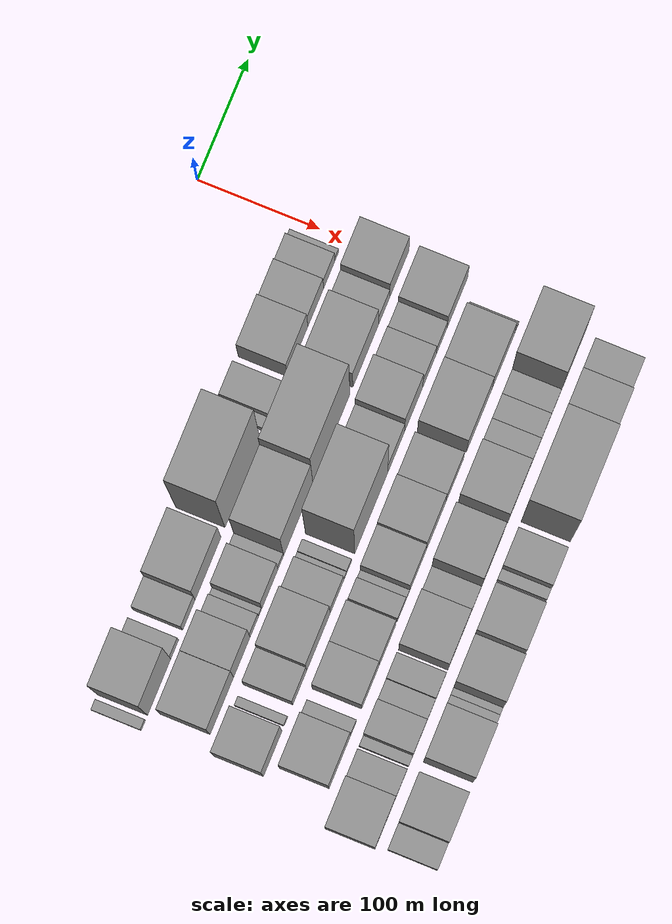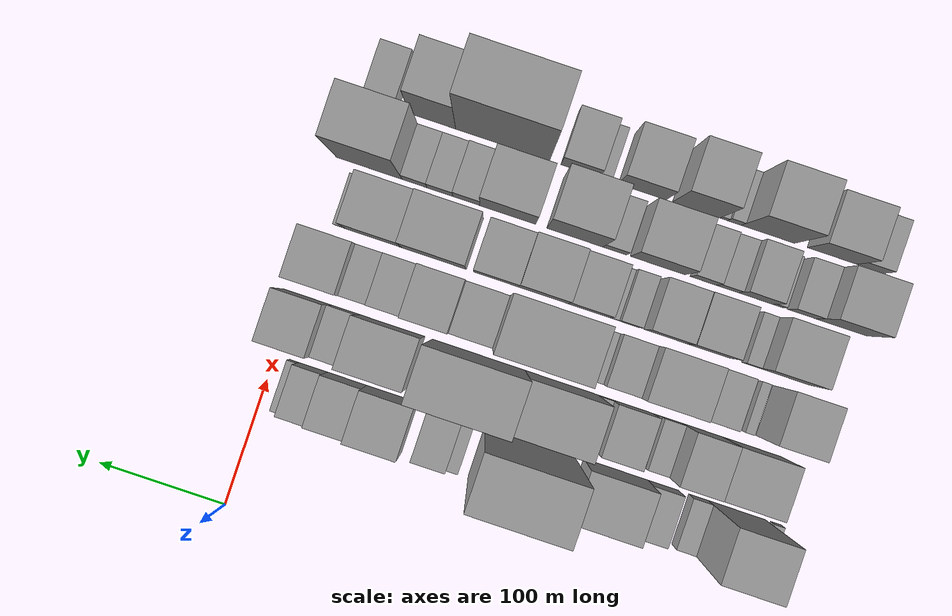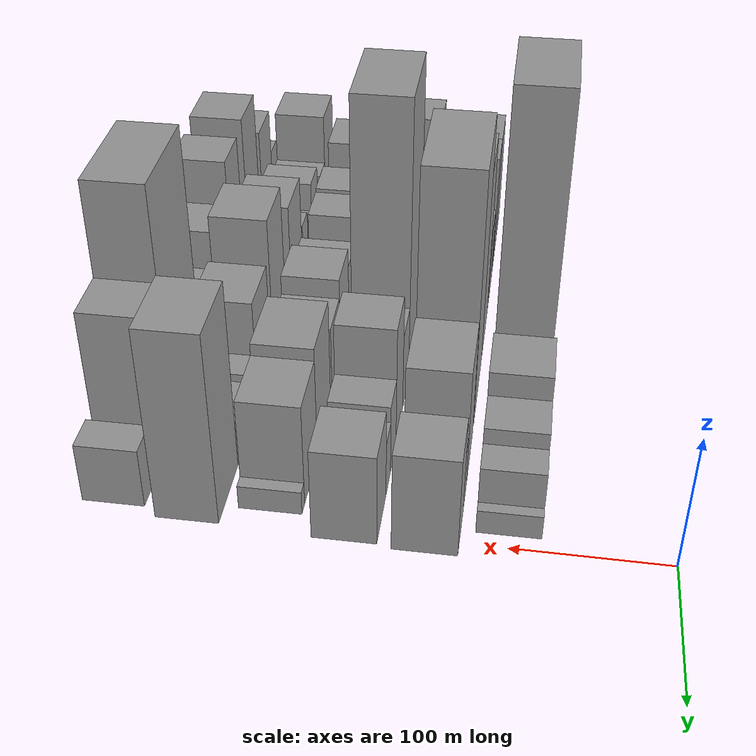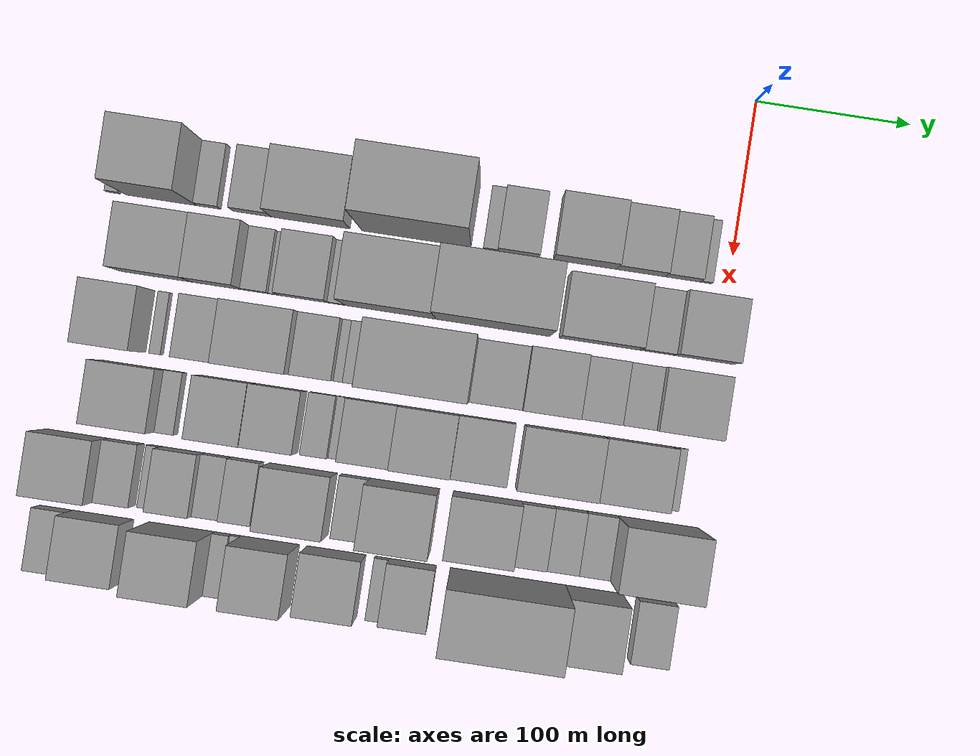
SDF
<sdf version="1.6">
 <world name="default">
  <model name="building_10">
   <static>1</static>
   <pose>100.0000 -398.6143 0 0.000000 0.000000 0.000000</pose>
   <link name="link">
    <pose>0 0 9.00 0 0 0</pose>
    <collision name="collision"><geometry><box><size>40.0000 8.4713 18.0000</size></box></geometry></collision>
    <visual name="visual">
     <cast_shadows>0</cast_shadows>
     <geometry><box><size>40.0000 8.4713 18.0000</size></box></geometry>
     <material>
      <script>
       <uri>model://grey_wall/materials/scripts</uri>
       <uri>model://grey_wall/materials/textures</uri>
       <name>vrc/grey_wall</name>
      </script>
     </material>
    </visual>
   </link>
  </model>
  <model name="building_11">
   <static>1</static>
   <pose>100.0000 -367.5345 0 0.000000 0.000000 0.000000</pose>
   <link name="link">
    <pose>0 0 73.50 0 0 0</pose>
    <collision name="collision"><geometry><box><size>40.0000 45.6884 147.0000</size></box></geometry></collision>
    <visual name="visual">
     <cast_shadows>0</cast_shadows>
     <geometry><box><size>40.0000 45.6884 147.0000</size></box></geometry>
     <material>
      <script>
       <uri>model://grey_wall/materials/scripts</uri>
       <uri>model://grey_wall/materials/textures</uri>
       <name>vrc/grey_wall</name>
      </script>
     </material>
    </visual>
   </link>
  </model>
  <model name="building_12">
   <static>1</static>
   <pose>100.0000 -336.9744 0 0.000000 0.000000 0.000000</pose>
   <link name="link">
    <pose>0 0 15.00 0 0 0</pose>
    <collision name="collision"><geometry><box><size>40.0000 15.4319 30.0000</size></box></geometry></collision>
    <visual name="visual">
     <cast_shadows>0</cast_shadows>
     <geometry><box><size>40.0000 15.4319 30.0000</size></box></geometry>
     <material>
      <script>
       <uri>model://grey_wall/materials/scripts</uri>
       <uri>model://grey_wall/materials/textures</uri>
       <name>vrc/grey_wall</name>
      </script>
     </material>
    </visual>
   </link>
  </model>
  <model name="building_13">
   <static>1</static>
   <pose>100.0000 -308.8902 0 0.000000 0.000000 0.000000</pose>
   <link name="link">
    <pose>0 0 21.00 0 0 0</pose>
    <collision name="collision"><geometry><box><size>40.0000 24.7364 42.0000</size></box></geometry></collision>
    <visual name="visual">
     <cast_shadows>0</cast_shadows>
     <geometry><box><size>40.0000 24.7364 42.0000</size></box></geometry>
     <material>
      <script>
       <uri>model://grey_wall/materials/scripts</uri>
       <uri>model://grey_wall/materials/textures</uri>
       <name>vrc/grey_wall</name>
      </script>
     </material>
    </visual>
   </link>
  </model>
  <model name="building_14">
   <static>1</static>
   <pose>100.0000 -271.0160 0 0.000000 0.000000 0.000000</pose>
   <link name="link">
    <pose>0 0 45.00 0 0 0</pose>
    <collision name="collision"><geometry><box><size>40.0000 51.0120 90.0000</size></box></geometry></collision>
    <visual name="visual">
     <cast_shadows>0</cast_shadows>
     <geometry><box><size>40.0000 51.0120 90.0000</size></box></geometry>
     <material>
      <script>
       <uri>model://grey_wall/materials/scripts</uri>
       <uri>model://grey_wall/materials/textures</uri>
       <name>vrc/grey_wall</name>
      </script>
     </material>
    </visual>
   </link>
  </model>
  <model name="building_15">
   <static>1</static>
   <pose>100.0000 -202.2346 0 0.000000 0.000000 0.000000</pose>
   <link name="link">
    <pose>0 0 111.00 0 0 0</pose>
    <collision name="collision"><geometry><box><size>40.0000 70.5507 222.0000</size></box></geometry></collision>
    <visual name="visual">
     <cast_shadows>0</cast_shadows>
     <geometry><box><size>40.0000 70.5507 222.0000</size></box></geometry>
     <material>
      <script>
       <uri>model://grey_wall/materials/scripts</uri>
       <uri>model://grey_wall/materials/textures</uri>
       <name>vrc/grey_wall</name>
      </script>
     </material>
    </visual>
   </link>
  </model>
  <model name="building_16">
   <static>1</static>
   <pose>100.0000 -154.2980 0 0.000000 0.000000 0.000000</pose>
   <link name="link">
    <pose>0 0 10.50 0 0 0</pose>
    <collision name="collision"><geometry><box><size>40.0000 9.3223 21.0000</size></box></geometry></collision>
    <visual name="visual">
     <cast_shadows>0</cast_shadows>
     <geometry><box><size>40.0000 9.3223 21.0000</size></box></geometry>
     <material>
      <script>
       <uri>model://grey_wall/materials/scripts</uri>
       <uri>model://grey_wall/materials/textures</uri>
       <name>vrc/grey_wall</name>
      </script>
     </material>
    </visual>
   </link>
  </model>
  <model name="building_17">
   <static>1</static>
   <pose>100.0000 -136.1564 0 0.000000 0.000000 0.000000</pose>
   <link name="link">
    <pose>0 0 22.50 0 0 0</pose>
    <collision name="collision"><geometry><box><size>40.0000 26.9609 45.0000</size></box></geometry></collision>
    <visual name="visual">
     <cast_shadows>0</cast_shadows>
     <geometry><box><size>40.0000 26.9609 45.0000</size></box></geometry>
     <material>
      <script>
       <uri>model://grey_wall/materials/scripts</uri>
       <uri>model://grey_wall/materials/textures</uri>
       <name>vrc/grey_wall</name>
      </script>
     </material>
    </visual>
   </link>
  </model>
  <model name="building_18">
   <static>1</static>
   <pose>100.0000 -93.2137 0 0.000000 0.000000 0.000000</pose>
   <link name="link">
    <pose>0 0 37.50 0 0 0</pose>
    <collision name="collision"><geometry><box><size>40.0000 40.9246 75.0000</size></box></geometry></collision>
    <visual name="visual">
     <cast_shadows>0</cast_shadows>
     <geometry><box><size>40.0000 40.9246 75.0000</size></box></geometry>
     <material>
      <script>
       <uri>model://grey_wall/materials/scripts</uri>
       <uri>model://grey_wall/materials/textures</uri>
       <name>vrc/grey_wall</name>
      </script>
     </material>
    </visual>
   </link>
  </model>
  <model name="building_19">
   <static>1</static>
   <pose>100.0000 -57.0168 0 0.000000 0.000000 0.000000</pose>
   <link name="link">
    <pose>0 0 28.50 0 0 0</pose>
    <collision name="collision"><geometry><box><size>40.0000 31.4691 57.0000</size></box></geometry></collision>
    <visual name="visual">
     <cast_shadows>0</cast_shadows>
     <geometry><box><size>40.0000 31.4691 57.0000</size></box></geometry>
     <material>
      <script>
       <uri>model://grey_wall/materials/scripts</uri>
       <uri>model://grey_wall/materials/textures</uri>
       <name>vrc/grey_wall</name>
      </script>
     </material>
    </visual>
   </link>
  </model>
  <model name="building_20">
   <static>1</static>
   <pose>100.0000 -29.9693 0 0.000000 0.000000 0.000000</pose>
   <link name="link">
    <pose>0 0 22.50 0 0 0</pose>
    <collision name="collision"><geometry><box><size>40.0000 22.6258 45.0000</size></box></geometry></collision>
    <visual name="visual">
     <cast_shadows>0</cast_shadows>
     <geometry><box><size>40.0000 22.6258 45.0000</size></box></geometry>
     <material>
      <script>
       <uri>model://grey_wall/materials/scripts</uri>
       <uri>model://grey_wall/materials/textures</uri>
       <name>vrc/grey_wall</name>
      </script>
     </material>
    </visual>
   </link>
  </model>
  <model name="building_21">
   <static>1</static>
   <pose>100.0000 -14.8287 0 0.000000 0.000000 0.000000</pose>
   <link name="link">
    <pose>0 0 9.00 0 0 0</pose>
    <collision name="collision"><geometry><box><size>40.0000 7.6554 18.0000</size></box></geometry></collision>
    <visual name="visual">
     <cast_shadows>0</cast_shadows>
     <geometry><box><size>40.0000 7.6554 18.0000</size></box></geometry>
     <material>
      <script>
       <uri>model://grey_wall/materials/scripts</uri>
       <uri>model://grey_wall/materials/textures</uri>
       <name>vrc/grey_wall</name>
      </script>
     </material>
    </visual>
   </link>
  </model>
  <model name="building_62">
   <static>1</static>
   <pose>149.0000 -362.7636 0 0.000000 0.000000 0.000000</pose>
   <link name="link">
    <pose>0 0 45.00 0 0 0</pose>
    <collision name="collision"><geometry><box><size>40.0000 46.4473 90.0000</size></box></geometry></collision>
    <visual name="visual">
     <cast_shadows>0</cast_shadows>
     <geometry><box><size>40.0000 46.4473 90.0000</size></box></geometry>
     <material>
      <script>
       <uri>model://grey_wall/materials/scripts</uri>
       <uri>model://grey_wall/materials/textures</uri>
       <name>vrc/grey_wall</name>
      </script>
     </material>
    </visual>
   </link>
  </model>
  <model name="building_63">
   <static>1</static>
   <pose>149.0000 -323.2786 0 0.000000 0.000000 0.000000</pose>
   <link name="link">
    <pose>0 0 46.50 0 0 0</pose>
    <collision name="collision"><geometry><box><size>40.0000 32.5226 93.0000</size></box></geometry></collision>
    <visual name="visual">
     <cast_shadows>0</cast_shadows>
     <geometry><box><size>40.0000 32.5226 93.0000</size></box></geometry>
     <material>
      <script>
       <uri>model://grey_wall/materials/scripts</uri>
       <uri>model://grey_wall/materials/textures</uri>
       <name>vrc/grey_wall</name>
      </script>
     </material>
    </visual>
   </link>
  </model>
  <model name="building_64">
   <static>1</static>
   <pose>149.0000 -298.6372 0 0.000000 0.000000 0.000000</pose>
   <link name="link">
    <pose>0 0 16.50 0 0 0</pose>
    <collision name="collision"><geometry><box><size>40.0000 16.7602 33.0000</size></box></geometry></collision>
    <visual name="visual">
     <cast_shadows>0</cast_shadows>
     <geometry><box><size>40.0000 16.7602 33.0000</size></box></geometry>
     <material>
      <script>
       <uri>model://grey_wall/materials/scripts</uri>
       <uri>model://grey_wall/materials/textures</uri>
       <name>vrc/grey_wall</name>
      </script>
     </material>
    </visual>
   </link>
  </model>
  <model name="building_65">
   <static>1</static>
   <pose>149.0000 -287.0875 0 0.000000 0.000000 0.000000</pose>
   <link name="link">
    <pose>0 0 7.50 0 0 0</pose>
    <collision name="collision"><geometry><box><size>40.0000 6.3392 15.0000</size></box></geometry></collision>
    <visual name="visual">
     <cast_shadows>0</cast_shadows>
     <geometry><box><size>40.0000 6.3392 15.0000</size></box></geometry>
     <material>
      <script>
       <uri>model://grey_wall/materials/scripts</uri>
       <uri>model://grey_wall/materials/textures</uri>
       <name>vrc/grey_wall</name>
      </script>
     </material>
    </visual>
   </link>
  </model>
  <model name="building_66">
   <static>1</static>
   <pose>149.0000 -267.8154 0 0.000000 0.000000 0.000000</pose>
   <link name="link">
    <pose>0 0 31.50 0 0 0</pose>
    <collision name="collision"><geometry><box><size>40.0000 32.2050 63.0000</size></box></geometry></collision>
    <visual name="visual">
     <cast_shadows>0</cast_shadows>
     <geometry><box><size>40.0000 32.2050 63.0000</size></box></geometry>
     <material>
      <script>
       <uri>model://grey_wall/materials/scripts</uri>
       <uri>model://grey_wall/materials/textures</uri>
       <name>vrc/grey_wall</name>
      </script>
     </material>
    </visual>
   </link>
  </model>
  <model name="building_67">
   <static>1</static>
   <pose>149.0000 -246.0578 0 0.000000 0.000000 0.000000</pose>
   <link name="link">
    <pose>0 0 12.00 0 0 0</pose>
    <collision name="collision"><geometry><box><size>40.0000 11.3102 24.0000</size></box></geometry></collision>
    <visual name="visual">
     <cast_shadows>0</cast_shadows>
     <geometry><box><size>40.0000 11.3102 24.0000</size></box></geometry>
     <material>
      <script>
       <uri>model://grey_wall/materials/scripts</uri>
       <uri>model://grey_wall/materials/textures</uri>
       <name>vrc/grey_wall</name>
      </script>
     </material>
    </visual>
   </link>
  </model>
  <model name="building_68">
   <static>1</static>
   <pose>149.0000 -211.2304 0 0.000000 0.000000 0.000000</pose>
   <link name="link">
    <pose>0 0 75.00 0 0 0</pose>
    <collision name="collision"><geometry><box><size>40.0000 58.3446 150.0000</size></box></geometry></collision>
    <visual name="visual">
     <cast_shadows>0</cast_shadows>
     <geometry><box><size>40.0000 58.3446 150.0000</size></box></geometry>
     <material>
      <script>
       <uri>model://grey_wall/materials/scripts</uri>
       <uri>model://grey_wall/materials/textures</uri>
       <name>vrc/grey_wall</name>
      </script>
     </material>
    </visual>
   </link>
  </model>
  <model name="building_69">
   <static>1</static>
   <pose>149.0000 -145.3100 0 0.000000 0.000000 0.000000</pose>
   <link name="link">
    <pose>0 0 97.50 0 0 0</pose>
    <collision name="collision"><geometry><box><size>40.0000 73.4961 195.0000</size></box></geometry></collision>
    <visual name="visual">
     <cast_shadows>0</cast_shadows>
     <geometry><box><size>40.0000 73.4961 195.0000</size></box></geometry>
     <material>
      <script>
       <uri>model://grey_wall/materials/scripts</uri>
       <uri>model://grey_wall/materials/textures</uri>
       <name>vrc/grey_wall</name>
      </script>
     </material>
    </visual>
   </link>
  </model>
  <model name="building_70">
   <static>1</static>
   <pose>149.0000 -76.8766 0 0.000000 0.000000 0.000000</pose>
   <link name="link">
    <pose>0 0 45.00 0 0 0</pose>
    <collision name="collision"><geometry><box><size>40.0000 51.3707 90.0000</size></box></geometry></collision>
    <visual name="visual">
     <cast_shadows>0</cast_shadows>
     <geometry><box><size>40.0000 51.3707 90.0000</size></box></geometry>
     <material>
      <script>
       <uri>model://grey_wall/materials/scripts</uri>
       <uri>model://grey_wall/materials/textures</uri>
       <name>vrc/grey_wall</name>
      </script>
     </material>
    </visual>
   </link>
  </model>
  <model name="building_71">
   <static>1</static>
   <pose>149.0000 -39.9326 0 0.000000 0.000000 0.000000</pose>
   <link name="link">
    <pose>0 0 22.50 0 0 0</pose>
    <collision name="collision"><geometry><box><size>40.0000 22.5172 45.0000</size></box></geometry></collision>
    <visual name="visual">
     <cast_shadows>0</cast_shadows>
     <geometry><box><size>40.0000 22.5172 45.0000</size></box></geometry>
     <material>
      <script>
       <uri>model://grey_wall/materials/scripts</uri>
       <uri>model://grey_wall/materials/textures</uri>
       <name>vrc/grey_wall</name>
      </script>
     </material>
    </visual>
   </link>
  </model>
  <model name="building_72">
   <static>1</static>
   <pose>149.0000 -9.3405 0 0.000000 0.000000 0.000000</pose>
   <link name="link">
    <pose>0 0 37.50 0 0 0</pose>
    <collision name="collision"><geometry><box><size>40.0000 38.6669 75.0000</size></box></geometry></collision>
    <visual name="visual">
     <cast_shadows>0</cast_shadows>
     <geometry><box><size>40.0000 38.6669 75.0000</size></box></geometry>
     <material>
      <script>
       <uri>model://grey_wall/materials/scripts</uri>
       <uri>model://grey_wall/materials/textures</uri>
       <name>vrc/grey_wall</name>
      </script>
     </material>
    </visual>
   </link>
  </model>
  <model name="building_111">
   <static>1</static>
   <pose>198.0000 -381.6067 0 0.000000 0.000000 0.000000</pose>
   <link name="link">
    <pose>0 0 46.50 0 0 0</pose>
    <collision name="collision"><geometry><box><size>40.0000 36.6570 93.0000</size></box></geometry></collision>
    <visual name="visual">
     <cast_shadows>0</cast_shadows>
     <geometry><box><size>40.0000 36.6570 93.0000</size></box></geometry>
     <material>
      <script>
       <uri>model://grey_wall/materials/scripts</uri>
       <uri>model://grey_wall/materials/textures</uri>
       <name>vrc/grey_wall</name>
      </script>
     </material>
    </visual>
   </link>
  </model>
  <model name="building_112">
   <static>1</static>
   <pose>198.0000 -355.5937 0 0.000000 0.000000 0.000000</pose>
   <link name="link">
    <pose>0 0 9.00 0 0 0</pose>
    <collision name="collision"><geometry><box><size>40.0000 7.3691 18.0000</size></box></geometry></collision>
    <visual name="visual">
     <cast_shadows>0</cast_shadows>
     <geometry><box><size>40.0000 7.3691 18.0000</size></box></geometry>
     <material>
      <script>
       <uri>model://grey_wall/materials/scripts</uri>
       <uri>model://grey_wall/materials/textures</uri>
       <name>vrc/grey_wall</name>
      </script>
     </material>
    </visual>
   </link>
  </model>
  <model name="building_113">
   <static>1</static>
   <pose>198.0000 -328.1384 0 0.000000 0.000000 0.000000</pose>
   <link name="link">
    <pose>0 0 27.00 0 0 0</pose>
    <collision name="collision"><geometry><box><size>40.0000 27.5415 54.0000</size></box></geometry></collision>
    <visual name="visual">
     <cast_shadows>0</cast_shadows>
     <geometry><box><size>40.0000 27.5415 54.0000</size></box></geometry>
     <material>
      <script>
       <uri>model://grey_wall/materials/scripts</uri>
       <uri>model://grey_wall/materials/textures</uri>
       <name>vrc/grey_wall</name>
      </script>
     </material>
    </visual>
   </link>
  </model>
  <model name="building_114">
   <static>1</static>
   <pose>198.0000 -291.0183 0 0.000000 0.000000 0.000000</pose>
   <link name="link">
    <pose>0 0 42.00 0 0 0</pose>
    <collision name="collision"><geometry><box><size>40.0000 46.6987 84.0000</size></box></geometry></collision>
    <visual name="visual">
     <cast_shadows>0</cast_shadows>
     <geometry><box><size>40.0000 46.6987 84.0000</size></box></geometry>
     <material>
      <script>
       <uri>model://grey_wall/materials/scripts</uri>
       <uri>model://grey_wall/materials/textures</uri>
       <name>vrc/grey_wall</name>
      </script>
     </material>
    </visual>
   </link>
  </model>
  <model name="building_115">
   <static>1</static>
   <pose>198.0000 -254.2331 0 0.000000 0.000000 0.000000</pose>
   <link name="link">
    <pose>0 0 22.50 0 0 0</pose>
    <collision name="collision"><geometry><box><size>40.0000 26.8717 45.0000</size></box></geometry></collision>
    <visual name="visual">
     <cast_shadows>0</cast_shadows>
     <geometry><box><size>40.0000 26.8717 45.0000</size></box></geometry>
     <material>
      <script>
       <uri>model://grey_wall/materials/scripts</uri>
       <uri>model://grey_wall/materials/textures</uri>
       <name>vrc/grey_wall</name>
      </script>
     </material>
    </visual>
   </link>
  </model>
  <model name="building_116">
   <static>1</static>
   <pose>198.0000 -237.7605 0 0.000000 0.000000 0.000000</pose>
   <link name="link">
    <pose>0 0 7.50 0 0 0</pose>
    <collision name="collision"><geometry><box><size>40.0000 6.0735 15.0000</size></box></geometry></collision>
    <visual name="visual">
     <cast_shadows>0</cast_shadows>
     <geometry><box><size>40.0000 6.0735 15.0000</size></box></geometry>
     <material>
      <script>
       <uri>model://grey_wall/materials/scripts</uri>
       <uri>model://grey_wall/materials/textures</uri>
       <name>vrc/grey_wall</name>
      </script>
     </material>
    </visual>
   </link>
  </model>
  <model name="building_117">
   <static>1</static>
   <pose>198.0000 -229.8115 0 0.000000 0.000000 0.000000</pose>
   <link name="link">
    <pose>0 0 10.50 0 0 0</pose>
    <collision name="collision"><geometry><box><size>40.0000 9.8244 21.0000</size></box></geometry></collision>
    <visual name="visual">
     <cast_shadows>0</cast_shadows>
     <geometry><box><size>40.0000 9.8244 21.0000</size></box></geometry>
     <material>
      <script>
       <uri>model://grey_wall/materials/scripts</uri>
       <uri>model://grey_wall/materials/textures</uri>
       <name>vrc/grey_wall</name>
      </script>
     </material>
    </visual>
   </link>
  </model>
  <model name="building_118">
   <static>1</static>
   <pose>198.0000 -186.0014 0 0.000000 0.000000 0.000000</pose>
   <link name="link">
    <pose>0 0 108.00 0 0 0</pose>
    <collision name="collision"><geometry><box><size>40.0000 65.7957 216.0000</size></box></geometry></collision>
    <visual name="visual">
     <cast_shadows>0</cast_shadows>
     <geometry><box><size>40.0000 65.7957 216.0000</size></box></geometry>
     <material>
      <script>
       <uri>model://grey_wall/materials/scripts</uri>
       <uri>model://grey_wall/materials/textures</uri>
       <name>vrc/grey_wall</name>
      </script>
     </material>
    </visual>
   </link>
  </model>
  <model name="building_119">
   <static>1</static>
   <pose>198.0000 -136.3098 0 0.000000 0.000000 0.000000</pose>
   <link name="link">
    <pose>0 0 30.00 0 0 0</pose>
    <collision name="collision"><geometry><box><size>40.0000 33.5875 60.0000</size></box></geometry></collision>
    <visual name="visual">
     <cast_shadows>0</cast_shadows>
     <geometry><box><size>40.0000 33.5875 60.0000</size></box></geometry>
     <material>
      <script>
       <uri>model://grey_wall/materials/scripts</uri>
       <uri>model://grey_wall/materials/textures</uri>
       <name>vrc/grey_wall</name>
      </script>
     </material>
    </visual>
   </link>
  </model>
  <model name="building_120">
   <static>1</static>
   <pose>198.0000 -101.5155 0 0.000000 0.000000 0.000000</pose>
   <link name="link">
    <pose>0 0 46.50 0 0 0</pose>
    <collision name="collision"><geometry><box><size>40.0000 36.0011 93.0000</size></box></geometry></collision>
    <visual name="visual">
     <cast_shadows>0</cast_shadows>
     <geometry><box><size>40.0000 36.0011 93.0000</size></box></geometry>
     <material>
      <script>
       <uri>model://grey_wall/materials/scripts</uri>
       <uri>model://grey_wall/materials/textures</uri>
       <name>vrc/grey_wall</name>
      </script>
     </material>
    </visual>
   </link>
  </model>
  <model name="building_121">
   <static>1</static>
   <pose>198.0000 -69.7007 0 0.000000 0.000000 0.000000</pose>
   <link name="link">
    <pose>0 0 27.00 0 0 0</pose>
    <collision name="collision"><geometry><box><size>40.0000 27.6285 54.0000</size></box></geometry></collision>
    <visual name="visual">
     <cast_shadows>0</cast_shadows>
     <geometry><box><size>40.0000 27.6285 54.0000</size></box></geometry>
     <material>
      <script>
       <uri>model://grey_wall/materials/scripts</uri>
       <uri>model://grey_wall/materials/textures</uri>
       <name>vrc/grey_wall</name>
      </script>
     </material>
    </visual>
   </link>
  </model>
  <model name="building_122">
   <static>1</static>
   <pose>198.0000 -44.9425 0 0.000000 0.000000 0.000000</pose>
   <link name="link">
    <pose>0 0 21.00 0 0 0</pose>
    <collision name="collision"><geometry><box><size>40.0000 21.8879 42.0000</size></box></geometry></collision>
    <visual name="visual">
     <cast_shadows>0</cast_shadows>
     <geometry><box><size>40.0000 21.8879 42.0000</size></box></geometry>
     <material>
      <script>
       <uri>model://grey_wall/materials/scripts</uri>
       <uri>model://grey_wall/materials/textures</uri>
       <name>vrc/grey_wall</name>
      </script>
     </material>
    </visual>
   </link>
  </model>
  <model name="building_123">
   <static>1</static>
   <pose>198.0000 -13.3625 0 0.000000 0.000000 0.000000</pose>
   <link name="link">
    <pose>0 0 34.50 0 0 0</pose>
    <collision name="collision"><geometry><box><size>40.0000 41.2721 69.0000</size></box></geometry></collision>
    <visual name="visual">
     <cast_shadows>0</cast_shadows>
     <geometry><box><size>40.0000 41.2721 69.0000</size></box></geometry>
     <material>
      <script>
       <uri>model://grey_wall/materials/scripts</uri>
       <uri>model://grey_wall/materials/textures</uri>
       <name>vrc/grey_wall</name>
      </script>
     </material>
    </visual>
   </link>
  </model>
  <model name="building_161">
   <static>1</static>
   <pose>247.0000 -368.5298 0 0.000000 0.000000 0.000000</pose>
   <link name="link">
    <pose>0 0 37.50 0 0 0</pose>
    <collision name="collision"><geometry><box><size>40.0000 42.4316 75.0000</size></box></geometry></collision>
    <visual name="visual">
     <cast_shadows>0</cast_shadows>
     <geometry><box><size>40.0000 42.4316 75.0000</size></box></geometry>
     <material>
      <script>
       <uri>model://grey_wall/materials/scripts</uri>
       <uri>model://grey_wall/materials/textures</uri>
       <name>vrc/grey_wall</name>
      </script>
     </material>
    </visual>
   </link>
  </model>
  <model name="building_162">
   <static>1</static>
   <pose>247.0000 -341.2496 0 0.000000 0.000000 0.000000</pose>
   <link name="link">
    <pose>0 0 13.50 0 0 0</pose>
    <collision name="collision"><geometry><box><size>40.0000 12.1287 27.0000</size></box></geometry></collision>
    <visual name="visual">
     <cast_shadows>0</cast_shadows>
     <geometry><box><size>40.0000 12.1287 27.0000</size></box></geometry>
     <material>
      <script>
       <uri>model://grey_wall/materials/scripts</uri>
       <uri>model://grey_wall/materials/textures</uri>
       <name>vrc/grey_wall</name>
      </script>
     </material>
    </visual>
   </link>
  </model>
  <model name="building_163">
   <static>1</static>
   <pose>247.0000 -307.7780 0 0.000000 0.000000 0.000000</pose>
   <link name="link">
    <pose>0 0 33.00 0 0 0</pose>
    <collision name="collision"><geometry><box><size>40.0000 34.8145 66.0000</size></box></geometry></collision>
    <visual name="visual">
     <cast_shadows>0</cast_shadows>
     <geometry><box><size>40.0000 34.8145 66.0000</size></box></geometry>
     <material>
      <script>
       <uri>model://grey_wall/materials/scripts</uri>
       <uri>model://grey_wall/materials/textures</uri>
       <name>vrc/grey_wall</name>
      </script>
     </material>
    </visual>
   </link>
  </model>
  <model name="building_164">
   <static>1</static>
   <pose>247.0000 -273.7244 0 0.000000 0.000000 0.000000</pose>
   <link name="link">
    <pose>0 0 31.50 0 0 0</pose>
    <collision name="collision"><geometry><box><size>40.0000 33.2926 63.0000</size></box></geometry></collision>
    <visual name="visual">
     <cast_shadows>0</cast_shadows>
     <geometry><box><size>40.0000 33.2926 63.0000</size></box></geometry>
     <material>
      <script>
       <uri>model://grey_wall/materials/scripts</uri>
       <uri>model://grey_wall/materials/textures</uri>
       <name>vrc/grey_wall</name>
      </script>
     </material>
    </visual>
   </link>
  </model>
  <model name="building_165">
   <static>1</static>
   <pose>247.0000 -245.4531 0 0.000000 0.000000 0.000000</pose>
   <link name="link">
    <pose>0 0 16.50 0 0 0</pose>
    <collision name="collision"><geometry><box><size>40.0000 17.2500 33.0000</size></box></geometry></collision>
    <visual name="visual">
     <cast_shadows>0</cast_shadows>
     <geometry><box><size>40.0000 17.2500 33.0000</size></box></geometry>
     <material>
      <script>
       <uri>model://grey_wall/materials/scripts</uri>
       <uri>model://grey_wall/materials/textures</uri>
       <name>vrc/grey_wall</name>
      </script>
     </material>
    </visual>
   </link>
  </model>
  <model name="building_166">
   <static>1</static>
   <pose>247.0000 -233.1487 0 0.000000 0.000000 0.000000</pose>
   <link name="link">
    <pose>0 0 7.50 0 0 0</pose>
    <collision name="collision"><geometry><box><size>40.0000 7.3587 15.0000</size></box></geometry></collision>
    <visual name="visual">
     <cast_shadows>0</cast_shadows>
     <geometry><box><size>40.0000 7.3587 15.0000</size></box></geometry>
     <material>
      <script>
       <uri>model://grey_wall/materials/scripts</uri>
       <uri>model://grey_wall/materials/textures</uri>
       <name>vrc/grey_wall</name>
      </script>
     </material>
    </visual>
   </link>
  </model>
  <model name="building_167">
   <static>1</static>
   <pose>247.0000 -212.8863 0 0.000000 0.000000 0.000000</pose>
   <link name="link">
    <pose>0 0 30.00 0 0 0</pose>
    <collision name="collision"><geometry><box><size>40.0000 33.1662 60.0000</size></box></geometry></collision>
    <visual name="visual">
     <cast_shadows>0</cast_shadows>
     <geometry><box><size>40.0000 33.1662 60.0000</size></box></geometry>
     <material>
      <script>
       <uri>model://grey_wall/materials/scripts</uri>
       <uri>model://grey_wall/materials/textures</uri>
       <name>vrc/grey_wall</name>
      </script>
     </material>
    </visual>
   </link>
  </model>
  <model name="building_168">
   <static>1</static>
   <pose>247.0000 -176.9066 0 0.000000 0.000000 0.000000</pose>
   <link name="link">
    <pose>0 0 37.50 0 0 0</pose>
    <collision name="collision"><geometry><box><size>40.0000 38.7931 75.0000</size></box></geometry></collision>
    <visual name="visual">
     <cast_shadows>0</cast_shadows>
     <geometry><box><size>40.0000 38.7931 75.0000</size></box></geometry>
     <material>
      <script>
       <uri>model://grey_wall/materials/scripts</uri>
       <uri>model://grey_wall/materials/textures</uri>
       <name>vrc/grey_wall</name>
      </script>
     </material>
    </visual>
   </link>
  </model>
  <model name="building_169">
   <static>1</static>
   <pose>247.0000 -139.7184 0 0.000000 0.000000 0.000000</pose>
   <link name="link">
    <pose>0 0 30.00 0 0 0</pose>
    <collision name="collision"><geometry><box><size>40.0000 35.5832 60.0000</size></box></geometry></collision>
    <visual name="visual">
     <cast_shadows>0</cast_shadows>
     <geometry><box><size>40.0000 35.5832 60.0000</size></box></geometry>
     <material>
      <script>
       <uri>model://grey_wall/materials/scripts</uri>
       <uri>model://grey_wall/materials/textures</uri>
       <name>vrc/grey_wall</name>
      </script>
     </material>
    </visual>
   </link>
  </model>
  <model name="building_170">
   <static>1</static>
   <pose>247.0000 -90.3617 0 0.000000 0.000000 0.000000</pose>
   <link name="link">
    <pose>0 0 43.50 0 0 0</pose>
    <collision name="collision"><geometry><box><size>40.0000 51.1302 87.0000</size></box></geometry></collision>
    <visual name="visual">
     <cast_shadows>0</cast_shadows>
     <geometry><box><size>40.0000 51.1302 87.0000</size></box></geometry>
     <material>
      <script>
       <uri>model://grey_wall/materials/scripts</uri>
       <uri>model://grey_wall/materials/textures</uri>
       <name>vrc/grey_wall</name>
      </script>
     </material>
    </visual>
   </link>
  </model>
  <model name="building_171">
   <static>1</static>
   <pose>247.0000 -42.3339 0 0.000000 0.000000 0.000000</pose>
   <link name="link">
    <pose>0 0 39.00 0 0 0</pose>
    <collision name="collision"><geometry><box><size>40.0000 44.9253 78.0000</size></box></geometry></collision>
    <visual name="visual">
     <cast_shadows>0</cast_shadows>
     <geometry><box><size>40.0000 44.9253 78.0000</size></box></geometry>
     <material>
      <script>
       <uri>model://grey_wall/materials/scripts</uri>
       <uri>model://grey_wall/materials/textures</uri>
       <name>vrc/grey_wall</name>
      </script>
     </material>
    </visual>
   </link>
  </model>
  <model name="building_172">
   <static>1</static>
   <pose>247.0000 -15.4201 0 0.000000 0.000000 0.000000</pose>
   <link name="link">
    <pose>0 0 9.00 0 0 0</pose>
    <collision name="collision"><geometry><box><size>40.0000 8.9021 18.0000</size></box></geometry></collision>
    <visual name="visual">
     <cast_shadows>0</cast_shadows>
     <geometry><box><size>40.0000 8.9021 18.0000</size></box></geometry>
     <material>
      <script>
       <uri>model://grey_wall/materials/scripts</uri>
       <uri>model://grey_wall/materials/textures</uri>
       <name>vrc/grey_wall</name>
      </script>
     </material>
    </visual>
   </link>
  </model>
  <model name="building_213">
   <static>1</static>
   <pose>296.0000 -398.2916 0 0.000000 0.000000 0.000000</pose>
   <link name="link">
    <pose>0 0 40.50 0 0 0</pose>
    <collision name="collision"><geometry><box><size>40.0000 40.7473 81.0000</size></box></geometry></collision>
    <visual name="visual">
     <cast_shadows>0</cast_shadows>
     <geometry><box><size>40.0000 40.7473 81.0000</size></box></geometry>
     <material>
      <script>
       <uri>model://grey_wall/materials/scripts</uri>
       <uri>model://grey_wall/materials/textures</uri>
       <name>vrc/grey_wall</name>
      </script>
     </material>
    </visual>
   </link>
  </model>
  <model name="building_214">
   <static>1</static>
   <pose>296.0000 -366.5287 0 0.000000 0.000000 0.000000</pose>
   <link name="link">
    <pose>0 0 19.50 0 0 0</pose>
    <collision name="collision"><geometry><box><size>40.0000 22.7786 39.0000</size></box></geometry></collision>
    <visual name="visual">
     <cast_shadows>0</cast_shadows>
     <geometry><box><size>40.0000 22.7786 39.0000</size></box></geometry>
     <material>
      <script>
       <uri>model://grey_wall/materials/scripts</uri>
       <uri>model://grey_wall/materials/textures</uri>
       <name>vrc/grey_wall</name>
      </script>
     </material>
    </visual>
   </link>
  </model>
  <model name="building_215">
   <static>1</static>
   <pose>296.0000 -347.8540 0 0.000000 0.000000 0.000000</pose>
   <link name="link">
    <pose>0 0 9.00 0 0 0</pose>
    <collision name="collision"><geometry><box><size>40.0000 8.5709 18.0000</size></box></geometry></collision>
    <visual name="visual">
     <cast_shadows>0</cast_shadows>
     <geometry><box><size>40.0000 8.5709 18.0000</size></box></geometry>
     <material>
      <script>
       <uri>model://grey_wall/materials/scripts</uri>
       <uri>model://grey_wall/materials/textures</uri>
       <name>vrc/grey_wall</name>
      </script>
     </material>
    </visual>
   </link>
  </model>
  <model name="building_216">
   <static>1</static>
   <pose>296.0000 -329.7267 0 0.000000 0.000000 0.000000</pose>
   <link name="link">
    <pose>0 0 27.00 0 0 0</pose>
    <collision name="collision"><geometry><box><size>40.0000 27.6837 54.0000</size></box></geometry></collision>
    <visual name="visual">
     <cast_shadows>0</cast_shadows>
     <geometry><box><size>40.0000 27.6837 54.0000</size></box></geometry>
     <material>
      <script>
       <uri>model://grey_wall/materials/scripts</uri>
       <uri>model://grey_wall/materials/textures</uri>
       <name>vrc/grey_wall</name>
      </script>
     </material>
    </visual>
   </link>
  </model>
  <model name="building_217">
   <static>1</static>
   <pose>296.0000 -307.1734 0 0.000000 0.000000 0.000000</pose>
   <link name="link">
    <pose>0 0 15.00 0 0 0</pose>
    <collision name="collision"><geometry><box><size>40.0000 17.4228 30.0000</size></box></geometry></collision>
    <visual name="visual">
     <cast_shadows>0</cast_shadows>
     <geometry><box><size>40.0000 17.4228 30.0000</size></box></geometry>
     <material>
      <script>
       <uri>model://grey_wall/materials/scripts</uri>
       <uri>model://grey_wall/materials/textures</uri>
       <name>vrc/grey_wall</name>
      </script>
     </material>
    </visual>
   </link>
  </model>
  <model name="building_218">
   <static>1</static>
   <pose>296.0000 -288.0831 0 0.000000 0.000000 0.000000</pose>
   <link name="link">
    <pose>0 0 19.50 0 0 0</pose>
    <collision name="collision"><geometry><box><size>40.0000 20.7578 39.0000</size></box></geometry></collision>
    <visual name="visual">
     <cast_shadows>0</cast_shadows>
     <geometry><box><size>40.0000 20.7578 39.0000</size></box></geometry>
     <material>
      <script>
       <uri>model://grey_wall/materials/scripts</uri>
       <uri>model://grey_wall/materials/textures</uri>
       <name>vrc/grey_wall</name>
      </script>
     </material>
    </visual>
   </link>
  </model>
  <model name="building_219">
   <static>1</static>
   <pose>296.0000 -251.8556 0 0.000000 0.000000 0.000000</pose>
   <link name="link">
    <pose>0 0 42.00 0 0 0</pose>
    <collision name="collision"><geometry><box><size>40.0000 43.6973 84.0000</size></box></geometry></collision>
    <visual name="visual">
     <cast_shadows>0</cast_shadows>
     <geometry><box><size>40.0000 43.6973 84.0000</size></box></geometry>
     <material>
      <script>
       <uri>model://grey_wall/materials/scripts</uri>
       <uri>model://grey_wall/materials/textures</uri>
       <name>vrc/grey_wall</name>
      </script>
     </material>
    </visual>
   </link>
  </model>
  <model name="building_220">
   <static>1</static>
   <pose>296.0000 -217.5683 0 0.000000 0.000000 0.000000</pose>
   <link name="link">
    <pose>0 0 18.00 0 0 0</pose>
    <collision name="collision"><geometry><box><size>40.0000 18.8773 36.0000</size></box></geometry></collision>
    <visual name="visual">
     <cast_shadows>0</cast_shadows>
     <geometry><box><size>40.0000 18.8773 36.0000</size></box></geometry>
     <material>
      <script>
       <uri>model://grey_wall/materials/scripts</uri>
       <uri>model://grey_wall/materials/textures</uri>
       <name>vrc/grey_wall</name>
      </script>
     </material>
    </visual>
   </link>
  </model>
  <model name="building_221">
   <static>1</static>
   <pose>296.0000 -185.8083 0 0.000000 0.000000 0.000000</pose>
   <link name="link">
    <pose>0 0 57.00 0 0 0</pose>
    <collision name="collision"><geometry><box><size>40.0000 44.6427 114.0000</size></box></geometry></collision>
    <visual name="visual">
     <cast_shadows>0</cast_shadows>
     <geometry><box><size>40.0000 44.6427 114.0000</size></box></geometry>
     <material>
      <script>
       <uri>model://grey_wall/materials/scripts</uri>
       <uri>model://grey_wall/materials/textures</uri>
       <name>vrc/grey_wall</name>
      </script>
     </material>
    </visual>
   </link>
  </model>
  <model name="building_222">
   <static>1</static>
   <pose>296.0000 -132.3161 0 0.000000 0.000000 0.000000</pose>
   <link name="link">
    <pose>0 0 42.00 0 0 0</pose>
    <collision name="collision"><geometry><box><size>40.0000 44.3417 84.0000</size></box></geometry></collision>
    <visual name="visual">
     <cast_shadows>0</cast_shadows>
     <geometry><box><size>40.0000 44.3417 84.0000</size></box></geometry>
     <material>
      <script>
       <uri>model://grey_wall/materials/scripts</uri>
       <uri>model://grey_wall/materials/textures</uri>
       <name>vrc/grey_wall</name>
      </script>
     </material>
    </visual>
   </link>
  </model>
  <model name="building_223">
   <static>1</static>
   <pose>296.0000 -99.4774 0 0.000000 0.000000 0.000000</pose>
   <link name="link">
    <pose>0 0 21.00 0 0 0</pose>
    <collision name="collision"><geometry><box><size>40.0000 21.3357 42.0000</size></box></geometry></collision>
    <visual name="visual">
     <cast_shadows>0</cast_shadows>
     <geometry><box><size>40.0000 21.3357 42.0000</size></box></geometry>
     <material>
      <script>
       <uri>model://grey_wall/materials/scripts</uri>
       <uri>model://grey_wall/materials/textures</uri>
       <name>vrc/grey_wall</name>
      </script>
     </material>
    </visual>
   </link>
  </model>
  <model name="building_224">
   <static>1</static>
   <pose>296.0000 -78.4709 0 0.000000 0.000000 0.000000</pose>
   <link name="link">
    <pose>0 0 18.00 0 0 0</pose>
    <collision name="collision"><geometry><box><size>40.0000 20.6773 36.0000</size></box></geometry></collision>
    <visual name="visual">
     <cast_shadows>0</cast_shadows>
     <geometry><box><size>40.0000 20.6773 36.0000</size></box></geometry>
     <material>
      <script>
       <uri>model://grey_wall/materials/scripts</uri>
       <uri>model://grey_wall/materials/textures</uri>
       <name>vrc/grey_wall</name>
      </script>
     </material>
    </visual>
   </link>
  </model>
  <model name="building_225">
   <static>1</static>
   <pose>296.0000 -58.2742 0 0.000000 0.000000 0.000000</pose>
   <link name="link">
    <pose>0 0 18.00 0 0 0</pose>
    <collision name="collision"><geometry><box><size>40.0000 19.7161 36.0000</size></box></geometry></collision>
    <visual name="visual">
     <cast_shadows>0</cast_shadows>
     <geometry><box><size>40.0000 19.7161 36.0000</size></box></geometry>
     <material>
      <script>
       <uri>model://grey_wall/materials/scripts</uri>
       <uri>model://grey_wall/materials/textures</uri>
       <name>vrc/grey_wall</name>
      </script>
     </material>
    </visual>
   </link>
  </model>
  <model name="building_226">
   <static>1</static>
   <pose>296.0000 -22.2253 0 0.000000 0.000000 0.000000</pose>
   <link name="link">
    <pose>0 0 72.00 0 0 0</pose>
    <collision name="collision"><geometry><box><size>40.0000 52.3818 144.0000</size></box></geometry></collision>
    <visual name="visual">
     <cast_shadows>0</cast_shadows>
     <geometry><box><size>40.0000 52.3818 144.0000</size></box></geometry>
     <material>
      <script>
       <uri>model://grey_wall/materials/scripts</uri>
       <uri>model://grey_wall/materials/textures</uri>
       <name>vrc/grey_wall</name>
      </script>
     </material>
    </visual>
   </link>
  </model>
  <model name="building_259">
   <static>1</static>
   <pose>345.0000 -405.0360 0 0.000000 0.000000 0.000000</pose>
   <link name="link">
    <pose>0 0 18.00 0 0 0</pose>
    <collision name="collision"><geometry><box><size>40.0000 21.5231 36.0000</size></box></geometry></collision>
    <visual name="visual">
     <cast_shadows>0</cast_shadows>
     <geometry><box><size>40.0000 21.5231 36.0000</size></box></geometry>
     <material>
      <script>
       <uri>model://grey_wall/materials/scripts</uri>
       <uri>model://grey_wall/materials/textures</uri>
       <name>vrc/grey_wall</name>
      </script>
     </material>
    </visual>
   </link>
  </model>
  <model name="building_260">
   <static>1</static>
   <pose>345.0000 -374.4815 0 0.000000 0.000000 0.000000</pose>
   <link name="link">
    <pose>0 0 37.50 0 0 0</pose>
    <collision name="collision"><geometry><box><size>40.0000 39.5858 75.0000</size></box></geometry></collision>
    <visual name="visual">
     <cast_shadows>0</cast_shadows>
     <geometry><box><size>40.0000 39.5858 75.0000</size></box></geometry>
     <material>
      <script>
       <uri>model://grey_wall/materials/scripts</uri>
       <uri>model://grey_wall/materials/textures</uri>
       <name>vrc/grey_wall</name>
      </script>
     </material>
    </visual>
   </link>
  </model>
  <model name="building_261">
   <static>1</static>
   <pose>345.0000 -323.3498 0 0.000000 0.000000 0.000000</pose>
   <link name="link">
    <pose>0 0 57.00 0 0 0</pose>
    <collision name="collision"><geometry><box><size>40.0000 42.6775 114.0000</size></box></geometry></collision>
    <visual name="visual">
     <cast_shadows>0</cast_shadows>
     <geometry><box><size>40.0000 42.6775 114.0000</size></box></geometry>
     <material>
      <script>
       <uri>model://grey_wall/materials/scripts</uri>
       <uri>model://grey_wall/materials/textures</uri>
       <name>vrc/grey_wall</name>
      </script>
     </material>
    </visual>
   </link>
  </model>
  <model name="building_262">
   <static>1</static>
   <pose>345.0000 -296.5547 0 0.000000 0.000000 0.000000</pose>
   <link name="link">
    <pose>0 0 12.00 0 0 0</pose>
    <collision name="collision"><geometry><box><size>40.0000 10.9127 24.0000</size></box></geometry></collision>
    <visual name="visual">
     <cast_shadows>0</cast_shadows>
     <geometry><box><size>40.0000 10.9127 24.0000</size></box></geometry>
     <material>
      <script>
       <uri>model://grey_wall/materials/scripts</uri>
       <uri>model://grey_wall/materials/textures</uri>
       <name>vrc/grey_wall</name>
      </script>
     </material>
    </visual>
   </link>
  </model>
  <model name="building_263">
   <static>1</static>
   <pose>345.0000 -287.9725 0 0.000000 0.000000 0.000000</pose>
   <link name="link">
    <pose>0 0 7.50 0 0 0</pose>
    <collision name="collision"><geometry><box><size>40.0000 6.2516 15.0000</size></box></geometry></collision>
    <visual name="visual">
     <cast_shadows>0</cast_shadows>
     <geometry><box><size>40.0000 6.2516 15.0000</size></box></geometry>
     <material>
      <script>
       <uri>model://grey_wall/materials/scripts</uri>
       <uri>model://grey_wall/materials/textures</uri>
       <name>vrc/grey_wall</name>
      </script>
     </material>
    </visual>
   </link>
  </model>
  <model name="building_264">
   <static>1</static>
   <pose>345.0000 -265.9818 0 0.000000 0.000000 0.000000</pose>
   <link name="link">
    <pose>0 0 54.00 0 0 0</pose>
    <collision name="collision"><geometry><box><size>40.0000 37.7300 108.0000</size></box></geometry></collision>
    <visual name="visual">
     <cast_shadows>0</cast_shadows>
     <geometry><box><size>40.0000 37.7300 108.0000</size></box></geometry>
     <material>
      <script>
       <uri>model://grey_wall/materials/scripts</uri>
       <uri>model://grey_wall/materials/textures</uri>
       <name>vrc/grey_wall</name>
      </script>
     </material>
    </visual>
   </link>
  </model>
  <model name="building_265">
   <static>1</static>
   <pose>345.0000 -223.0240 0 0.000000 0.000000 0.000000</pose>
   <link name="link">
    <pose>0 0 37.50 0 0 0</pose>
    <collision name="collision"><geometry><box><size>40.0000 38.1856 75.0000</size></box></geometry></collision>
    <visual name="visual">
     <cast_shadows>0</cast_shadows>
     <geometry><box><size>40.0000 38.1856 75.0000</size></box></geometry>
     <material>
      <script>
       <uri>model://grey_wall/materials/scripts</uri>
       <uri>model://grey_wall/materials/textures</uri>
       <name>vrc/grey_wall</name>
      </script>
     </material>
    </visual>
   </link>
  </model>
  <model name="building_266">
   <static>1</static>
   <pose>345.0000 -193.3736 0 0.000000 0.000000 0.000000</pose>
   <link name="link">
    <pose>0 0 10.50 0 0 0</pose>
    <collision name="collision"><geometry><box><size>40.0000 9.1152 21.0000</size></box></geometry></collision>
    <visual name="visual">
     <cast_shadows>0</cast_shadows>
     <geometry><box><size>40.0000 9.1152 21.0000</size></box></geometry>
     <material>
      <script>
       <uri>model://grey_wall/materials/scripts</uri>
       <uri>model://grey_wall/materials/textures</uri>
       <name>vrc/grey_wall</name>
      </script>
     </material>
    </visual>
   </link>
  </model>
  <model name="building_267">
   <static>1</static>
   <pose>345.0000 -173.5111 0 0.000000 0.000000 0.000000</pose>
   <link name="link">
    <pose>0 0 27.00 0 0 0</pose>
    <collision name="collision"><geometry><box><size>40.0000 30.6098 54.0000</size></box></geometry></collision>
    <visual name="visual">
     <cast_shadows>0</cast_shadows>
     <geometry><box><size>40.0000 30.6098 54.0000</size></box></geometry>
     <material>
      <script>
       <uri>model://grey_wall/materials/scripts</uri>
       <uri>model://grey_wall/materials/textures</uri>
       <name>vrc/grey_wall</name>
      </script>
     </material>
    </visual>
   </link>
  </model>
  <model name="building_268">
   <static>1</static>
   <pose>345.0000 -111.7947 0 0.000000 0.000000 0.000000</pose>
   <link name="link">
    <pose>0 0 94.50 0 0 0</pose>
    <collision name="collision"><geometry><box><size>40.0000 74.8229 189.0000</size></box></geometry></collision>
    <visual name="visual">
     <cast_shadows>0</cast_shadows>
     <geometry><box><size>40.0000 74.8229 189.0000</size></box></geometry>
     <material>
      <script>
       <uri>model://grey_wall/materials/scripts</uri>
       <uri>model://grey_wall/materials/textures</uri>
       <name>vrc/grey_wall</name>
      </script>
     </material>
    </visual>
   </link>
  </model>
  <model name="building_269">
   <static>1</static>
   <pose>345.0000 -55.9695 0 0.000000 0.000000 0.000000</pose>
   <link name="link">
    <pose>0 0 60.00 0 0 0</pose>
    <collision name="collision"><geometry><box><size>40.0000 36.8276 120.0000</size></box></geometry></collision>
    <visual name="visual">
     <cast_shadows>0</cast_shadows>
     <geometry><box><size>40.0000 36.8276 120.0000</size></box></geometry>
     <material>
      <script>
       <uri>model://grey_wall/materials/scripts</uri>
       <uri>model://grey_wall/materials/textures</uri>
       <name>vrc/grey_wall</name>
      </script>
     </material>
    </visual>
   </link>
  </model>
  <model name="building_270">
   <static>1</static>
   <pose>345.0000 -16.2764 0 0.000000 0.000000 0.000000</pose>
   <link name="link">
    <pose>0 0 22.50 0 0 0</pose>
    <collision name="collision"><geometry><box><size>40.0000 24.5586 45.0000</size></box></geometry></collision>
    <visual name="visual">
     <cast_shadows>0</cast_shadows>
     <geometry><box><size>40.0000 24.5586 45.0000</size></box></geometry>
     <material>
      <script>
       <uri>model://grey_wall/materials/scripts</uri>
       <uri>model://grey_wall/materials/textures</uri>
       <name>vrc/grey_wall</name>
      </script>
     </material>
    </visual>
   </link>
  </model>
 </world>
</sdf>
